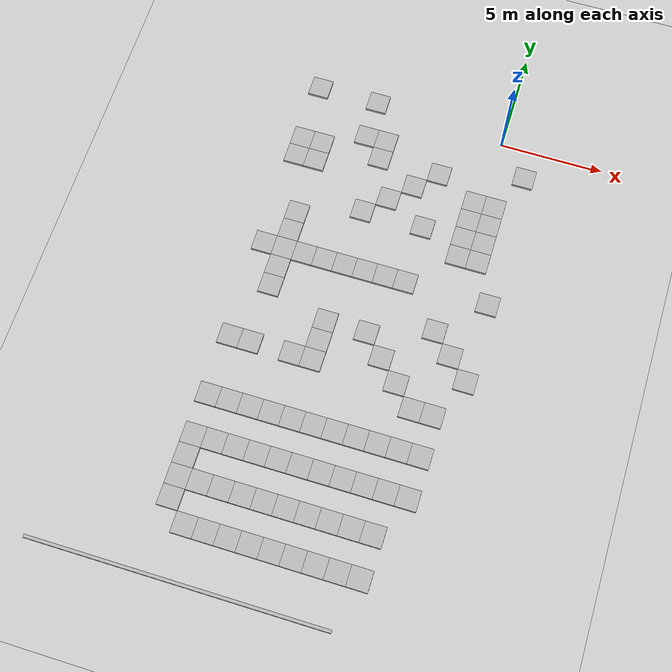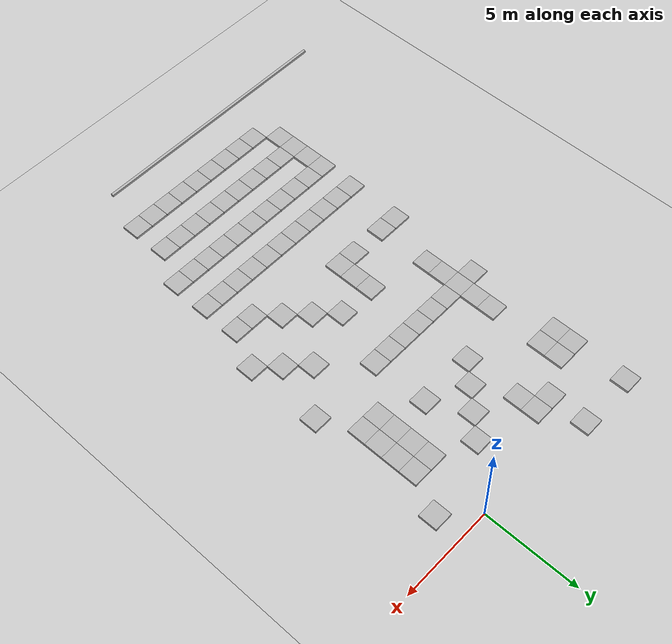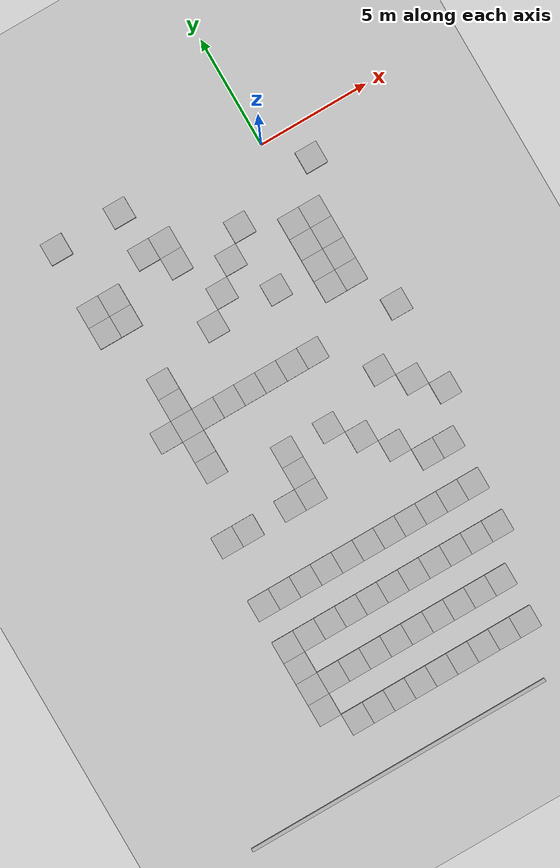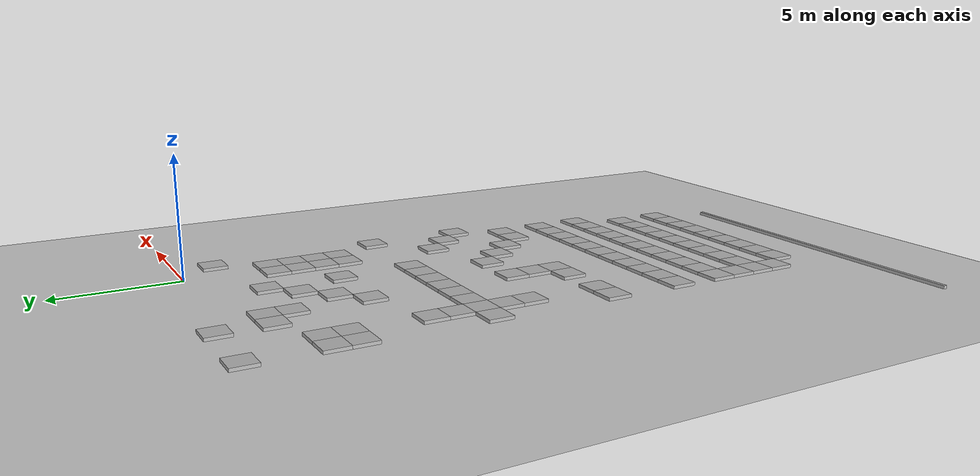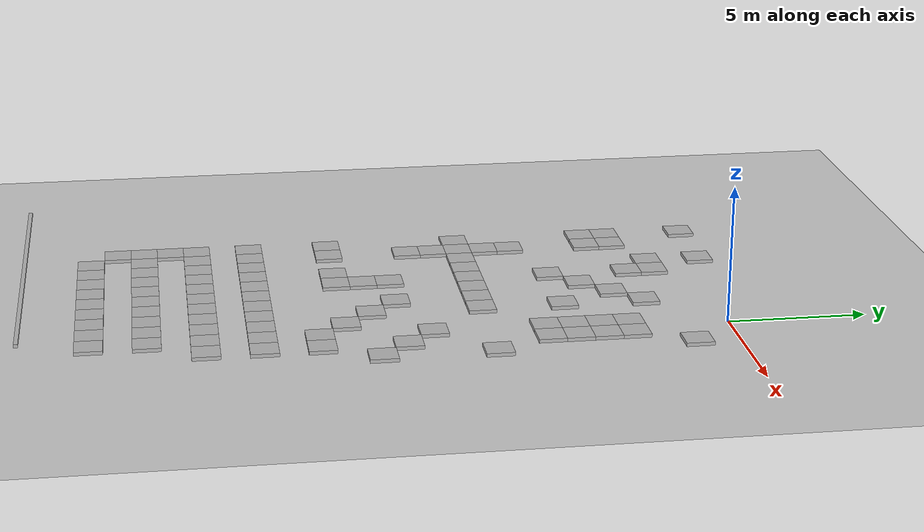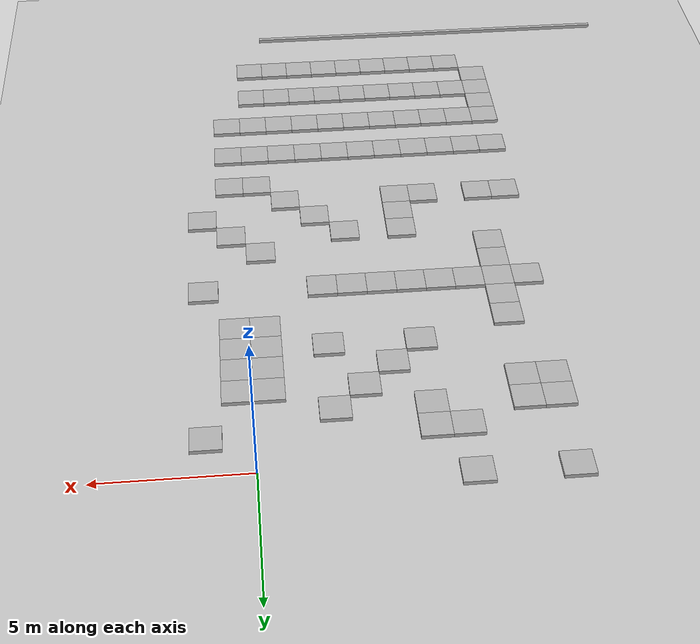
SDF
<sdf version="1.7">
 <world name="default">
  <model name="ground_plane">
   <static>1</static>
   <link name="link">
    <collision name="collision">
     <geometry><plane><normal>0 0 1</normal><size>100 100</size></plane></geometry>
     <surface>
      <contact><collide_bitmask>65535</collide_bitmask></contact>
      <friction><ode><mu>100</mu><mu2>50</mu2></ode></friction>
     </surface>
    </collision>
    <visual name="visual">
     <cast_shadows>0</cast_shadows>
     <geometry><plane><normal>0 0 1</normal><size>100 100</size></plane></geometry>
     <material>
      <script><uri>file://media/materials/scripts/gazebo.material</uri><name>Gazebo/Grey</name></script>
     </material>
    </visual>
   </link>
  </model>
  <model name="concrete_barrier_14m_6">
   <static>1</static>
   <link name="link">
    <collision name="concrete_barrier_14m_01">
     <pose>-0 0 0.3 0 -0 0</pose>
     <geometry><box><size>14 0.15 0.6</size></box></geometry>
    </collision>
    <visual name="concrete_barrier_14m_visual">
     <geometry><mesh><uri>model://concrete_barrier_14m/meshes/concrete_barrier_14m.dae</uri></mesh></geometry>
    </visual>
   </link>
   <pose>-8 -25 0 0 0 -1.56953</pose>
  </model>
  <model name="concrete_cube_1m_8">
   <static>1</static>
   <link name="link">
    <collision name="concrete_cube_1m">
     <pose>-0 0 0.3 0 -0 0</pose>
     <geometry><box><size>1 1 0.6</size></box></geometry>
    </collision>
    <visual name="concrete_cube_1m_visual">
     <geometry><mesh><uri>model://concrete_cube_1m/meshes/concrete_cube_1m.dae</uri></mesh></geometry>
    </visual>
   </link>
   <pose>-0.5 -4.5 0 0 -0 0</pose>
  </model>
  <model name="concrete_cube_1m_9">
   <static>1</static>
   <link name="link">
    <collision name="concrete_cube_1m">
     <pose>-0 0 0.3 0 -0 0</pose>
     <geometry><box><size>1 1 0.6</size></box></geometry>
    </collision>
    <visual name="concrete_cube_1m_visual">
     <geometry><mesh><uri>model://concrete_cube_1m/meshes/concrete_cube_1m.dae</uri></mesh></geometry>
    </visual>
   </link>
   <pose>0.5 -4.5 0 0 -0 0</pose>
  </model>
  <model name="concrete_cube_1m_12">
   <static>1</static>
   <link name="link">
    <collision name="concrete_cube_1m">
     <pose>-0 0 0.3 0 -0 0</pose>
     <geometry><box><size>1 1 0.6</size></box></geometry>
    </collision>
    <visual name="concrete_cube_1m_visual">
     <geometry><mesh><uri>model://concrete_cube_1m/meshes/concrete_cube_1m.dae</uri></mesh></geometry>
    </visual>
   </link>
   <pose>-8.5 -8.5 0 0 -0 0</pose>
  </model>
  <model name="concrete_cube_1m_13">
   <static>1</static>
   <link name="link">
    <collision name="concrete_cube_1m">
     <pose>-0 0 0.3 0 -0 0</pose>
     <geometry><box><size>1 1 0.6</size></box></geometry>
    </collision>
    <visual name="concrete_cube_1m_visual">
     <geometry><mesh><uri>model://concrete_cube_1m/meshes/concrete_cube_1m.dae</uri></mesh></geometry>
    </visual>
   </link>
   <pose>-7.5 -8.5 0 0 -0 0</pose>
  </model>
  <model name="concrete_cube_1m_14">
   <static>1</static>
   <link name="link">
    <collision name="concrete_cube_1m">
     <pose>-0 0 0.3 0 -0 0</pose>
     <geometry><box><size>1 1 0.6</size></box></geometry>
    </collision>
    <visual name="concrete_cube_1m_visual">
     <geometry><mesh><uri>model://concrete_cube_1m/meshes/concrete_cube_1m.dae</uri></mesh></geometry>
    </visual>
   </link>
   <pose>-6.5 -8.5 0 0 -0 0</pose>
  </model>
  <model name="concrete_cube_1m_15">
   <static>1</static>
   <link name="link">
    <collision name="concrete_cube_1m">
     <pose>-0 0 0.3 0 -0 0</pose>
     <geometry><box><size>1 1 0.6</size></box></geometry>
    </collision>
    <visual name="concrete_cube_1m_visual">
     <geometry><mesh><uri>model://concrete_cube_1m/meshes/concrete_cube_1m.dae</uri></mesh></geometry>
    </visual>
   </link>
   <pose>-8.5 -7.5 0 0 -0 0</pose>
  </model>
  <model name="concrete_cube_1m_16">
   <static>1</static>
   <link name="link">
    <collision name="concrete_cube_1m">
     <pose>-0 0 0.3 0 -0 0</pose>
     <geometry><box><size>1 1 0.6</size></box></geometry>
    </collision>
    <visual name="concrete_cube_1m_visual">
     <geometry><mesh><uri>model://concrete_cube_1m/meshes/concrete_cube_1m.dae</uri></mesh></geometry>
    </visual>
   </link>
   <pose>-8.5 -6.5 0 0 -0 0</pose>
  </model>
  <model name="concrete_cube_1m_50">
   <static>1</static>
   <link name="link">
    <collision name="concrete_cube_1m">
     <pose>-0 0 0.3 0 -0 0</pose>
     <geometry><box><size>1 1 0.6</size></box></geometry>
    </collision>
    <visual name="concrete_cube_1m_visual">
     <geometry><mesh><uri>model://concrete_cube_1m/meshes/concrete_cube_1m.dae</uri></mesh></geometry>
    </visual>
   </link>
   <pose>-6.5 0.5 0 0 -0 0</pose>
  </model>
  <model name="concrete_cube_1m_62">
   <static>1</static>
   <link name="link">
    <collision name="concrete_cube_1m">
     <pose>-0 0 0.3 0 -0 0</pose>
     <geometry><box><size>1 1 0.6</size></box></geometry>
    </collision>
    <visual name="concrete_cube_1m_visual">
     <geometry><mesh><uri>model://concrete_cube_1m/meshes/concrete_cube_1m.dae</uri></mesh></geometry>
    </visual>
   </link>
   <pose>-9.5 0.5 0 0 -0 0</pose>
  </model>
  <model name="concrete_cube_1m_76">
   <static>1</static>
   <link name="link">
    <collision name="concrete_cube_1m">
     <pose>-0 0 0.3 0 -0 0</pose>
     <geometry><box><size>1 1 0.6</size></box></geometry>
    </collision>
    <visual name="concrete_cube_1m_visual">
     <geometry><mesh><uri>model://concrete_cube_1m/meshes/concrete_cube_1m.dae</uri></mesh></geometry>
    </visual>
   </link>
   <pose>0.5 -3.5 0 0 -0 0</pose>
  </model>
  <model name="concrete_cube_1m_77">
   <static>1</static>
   <link name="link">
    <collision name="concrete_cube_1m">
     <pose>-0 0 0.3 0 -0 0</pose>
     <geometry><box><size>1 1 0.6</size></box></geometry>
    </collision>
    <visual name="concrete_cube_1m_visual">
     <geometry><mesh><uri>model://concrete_cube_1m/meshes/concrete_cube_1m.dae</uri></mesh></geometry>
    </visual>
   </link>
   <pose>-0.5 -3.5 0 0 -0 0</pose>
  </model>
  <model name="concrete_cube_1m_78">
   <static>1</static>
   <link name="link">
    <collision name="concrete_cube_1m">
     <pose>-0 0 0.3 0 -0 0</pose>
     <geometry><box><size>1 1 0.6</size></box></geometry>
    </collision>
    <visual name="concrete_cube_1m_visual">
     <geometry><mesh><uri>model://concrete_cube_1m/meshes/concrete_cube_1m.dae</uri></mesh></geometry>
    </visual>
   </link>
   <pose>0.5 -6.5 0 0 -0 0</pose>
  </model>
  <model name="concrete_cube_1m_79">
   <static>1</static>
   <link name="link">
    <collision name="concrete_cube_1m">
     <pose>-0 0 0.3 0 -0 0</pose>
     <geometry><box><size>1 1 0.6</size></box></geometry>
    </collision>
    <visual name="concrete_cube_1m_visual">
     <geometry><mesh><uri>model://concrete_cube_1m/meshes/concrete_cube_1m.dae</uri></mesh></geometry>
    </visual>
   </link>
   <pose>0.5 -5.5 0 0 -0 0</pose>
  </model>
  <model name="concrete_cube_1m_80">
   <static>1</static>
   <link name="link">
    <collision name="concrete_cube_1m">
     <pose>-0 0 0.3 0 -0 0</pose>
     <geometry><box><size>1 1 0.6</size></box></geometry>
    </collision>
    <visual name="concrete_cube_1m_visual">
     <geometry><mesh><uri>model://concrete_cube_1m/meshes/concrete_cube_1m.dae</uri></mesh></geometry>
    </visual>
   </link>
   <pose>-0.5 -6.5 0 0 -0 0</pose>
  </model>
  <model name="concrete_cube_1m_81">
   <static>1</static>
   <link name="link">
    <collision name="concrete_cube_1m">
     <pose>-0 0 0.3 0 -0 0</pose>
     <geometry><box><size>1 1 0.6</size></box></geometry>
    </collision>
    <visual name="concrete_cube_1m_visual">
     <geometry><mesh><uri>model://concrete_cube_1m/meshes/concrete_cube_1m.dae</uri></mesh></geometry>
    </visual>
   </link>
   <pose>-0.5 -5.5 0 0 -0 0</pose>
  </model>
  <model name="concrete_cube_1m_86">
   <static>1</static>
   <link name="link">
    <collision name="concrete_cube_1m">
     <pose>-0 0 0.3 0 -0 0</pose>
     <geometry><box><size>1 1 0.6</size></box></geometry>
    </collision>
    <visual name="concrete_cube_1m_visual">
     <geometry><mesh><uri>model://concrete_cube_1m/meshes/concrete_cube_1m.dae</uri></mesh></geometry>
    </visual>
   </link>
   <pose>1.5 -1.5 0 0 -0 0</pose>
  </model>
  <model name="concrete_cube_1m_88">
   <static>1</static>
   <link name="link">
    <collision name="concrete_cube_1m">
     <pose>-0 0 0.3 0 -0 0</pose>
     <geometry><box><size>1 1 0.6</size></box></geometry>
    </collision>
    <visual name="concrete_cube_1m_visual">
     <geometry><mesh><uri>model://concrete_cube_1m/meshes/concrete_cube_1m.dae</uri></mesh></geometry>
    </visual>
   </link>
   <pose>-5.5 -8.5 0 0 -0 0</pose>
  </model>
  <model name="concrete_cube_1m_89">
   <static>1</static>
   <link name="link">
    <collision name="concrete_cube_1m">
     <pose>-0 0 0.3 0 -0 0</pose>
     <geometry><box><size>1 1 0.6</size></box></geometry>
    </collision>
    <visual name="concrete_cube_1m_visual">
     <geometry><mesh><uri>model://concrete_cube_1m/meshes/concrete_cube_1m.dae</uri></mesh></geometry>
    </visual>
   </link>
   <pose>-4.5 -8.5 0 0 -0 0</pose>
  </model>
  <model name="concrete_cube_1m_90">
   <static>1</static>
   <link name="link">
    <collision name="concrete_cube_1m">
     <pose>-0 0 0.3 0 -0 0</pose>
     <geometry><box><size>1 1 0.6</size></box></geometry>
    </collision>
    <visual name="concrete_cube_1m_visual">
     <geometry><mesh><uri>model://concrete_cube_1m/meshes/concrete_cube_1m.dae</uri></mesh></geometry>
    </visual>
   </link>
   <pose>-3.5 -8.5 0 0 -0 0</pose>
  </model>
  <model name="concrete_cube_1m_91">
   <static>1</static>
   <link name="link">
    <collision name="concrete_cube_1m">
     <pose>-0 0 0.3 0 -0 0</pose>
     <geometry><box><size>1 1 0.6</size></box></geometry>
    </collision>
    <visual name="concrete_cube_1m_visual">
     <geometry><mesh><uri>model://concrete_cube_1m/meshes/concrete_cube_1m.dae</uri></mesh></geometry>
    </visual>
   </link>
   <pose>-2.5 -8.5 0 0 -0 0</pose>
  </model>
  <model name="concrete_cube_1m_92">
   <static>1</static>
   <link name="link">
    <collision name="concrete_cube_1m">
     <pose>-0 0 0.3 0 -0 0</pose>
     <geometry><box><size>1 1 0.6</size></box></geometry>
    </collision>
    <visual name="concrete_cube_1m_visual">
     <geometry><mesh><uri>model://concrete_cube_1m/meshes/concrete_cube_1m.dae</uri></mesh></geometry>
    </visual>
   </link>
   <pose>-9.5 -3.5 0 0 -0 0</pose>
  </model>
  <model name="concrete_cube_1m_93">
   <static>1</static>
   <link name="link">
    <collision name="concrete_cube_1m">
     <pose>-0 0 0.3 0 -0 0</pose>
     <geometry><box><size>1 1 0.6</size></box></geometry>
    </collision>
    <visual name="concrete_cube_1m_visual">
     <geometry><mesh><uri>model://concrete_cube_1m/meshes/concrete_cube_1m.dae</uri></mesh></geometry>
    </visual>
   </link>
   <pose>-8.5 -3.5 0 0 -0 0</pose>
  </model>
  <model name="concrete_cube_1m_94">
   <static>1</static>
   <link name="link">
    <collision name="concrete_cube_1m">
     <pose>-0 0 0.3 0 -0 0</pose>
     <geometry><box><size>1 1 0.6</size></box></geometry>
    </collision>
    <visual name="concrete_cube_1m_visual">
     <geometry><mesh><uri>model://concrete_cube_1m/meshes/concrete_cube_1m.dae</uri></mesh></geometry>
    </visual>
   </link>
   <pose>-8.5 -2.5 0 0 -0 0</pose>
  </model>
  <model name="concrete_cube_1m_95">
   <static>1</static>
   <link name="link">
    <collision name="concrete_cube_1m">
     <pose>-0 0 0.3 0 -0 0</pose>
     <geometry><box><size>1 1 0.6</size></box></geometry>
    </collision>
    <visual name="concrete_cube_1m_visual">
     <geometry><mesh><uri>model://concrete_cube_1m/meshes/concrete_cube_1m.dae</uri></mesh></geometry>
    </visual>
   </link>
   <pose>-9.5 -2.5 0 0 -0 0</pose>
  </model>
  <model name="concrete_cube_1m_96">
   <static>1</static>
   <link name="link">
    <collision name="concrete_cube_1m">
     <pose>-0 0 0.3 0 -0 0</pose>
     <geometry><box><size>1 1 0.6</size></box></geometry>
    </collision>
    <visual name="concrete_cube_1m_visual">
     <geometry><mesh><uri>model://concrete_cube_1m/meshes/concrete_cube_1m.dae</uri></mesh></geometry>
    </visual>
   </link>
   <pose>-5.5 -5.5 0 0 -0 0</pose>
  </model>
  <model name="concrete_cube_1m_97">
   <static>1</static>
   <link name="link">
    <collision name="concrete_cube_1m">
     <pose>-0 0 0.3 0 -0 0</pose>
     <geometry><box><size>1 1 0.6</size></box></geometry>
    </collision>
    <visual name="concrete_cube_1m_visual">
     <geometry><mesh><uri>model://concrete_cube_1m/meshes/concrete_cube_1m.dae</uri></mesh></geometry>
    </visual>
   </link>
   <pose>-4.5 -4.5 0 0 -0 0</pose>
  </model>
  <model name="concrete_cube_1m_98">
   <static>1</static>
   <link name="link">
    <collision name="concrete_cube_1m">
     <pose>-0 0 0.3 0 -0 0</pose>
     <geometry><box><size>1 1 0.6</size></box></geometry>
    </collision>
    <visual name="concrete_cube_1m_visual">
     <geometry><mesh><uri>model://concrete_cube_1m/meshes/concrete_cube_1m.dae</uri></mesh></geometry>
    </visual>
   </link>
   <pose>-3.5 -3.5 0 0 -0 0</pose>
  </model>
  <model name="concrete_cube_1m_99">
   <static>1</static>
   <link name="link">
    <collision name="concrete_cube_1m">
     <pose>-0 0 0.3 0 -0 0</pose>
     <geometry><box><size>1 1 0.6</size></box></geometry>
    </collision>
    <visual name="concrete_cube_1m_visual">
     <geometry><mesh><uri>model://concrete_cube_1m/meshes/concrete_cube_1m.dae</uri></mesh></geometry>
    </visual>
   </link>
   <pose>-2.5 -2.5 0 0 -0 0</pose>
  </model>
  <model name="concrete_cube_1m_100">
   <static>1</static>
   <link name="link">
    <collision name="concrete_cube_1m">
     <pose>-0 0 0.3 0 -0 0</pose>
     <geometry><box><size>1 1 0.6</size></box></geometry>
    </collision>
    <visual name="concrete_cube_1m_visual">
     <geometry><mesh><uri>model://concrete_cube_1m/meshes/concrete_cube_1m.dae</uri></mesh></geometry>
    </visual>
   </link>
   <pose>-6.5 -1.5 0 0 -0 0</pose>
  </model>
  <model name="concrete_cube_1m_101">
   <static>1</static>
   <link name="link">
    <collision name="concrete_cube_1m">
     <pose>-0 0 0.3 0 -0 0</pose>
     <geometry><box><size>1 1 0.6</size></box></geometry>
    </collision>
    <visual name="concrete_cube_1m_visual">
     <geometry><mesh><uri>model://concrete_cube_1m/meshes/concrete_cube_1m.dae</uri></mesh></geometry>
    </visual>
   </link>
   <pose>-5.5 -1.5 0 0 -0 0</pose>
  </model>
  <model name="concrete_cube_1m_102">
   <static>1</static>
   <link name="link">
    <collision name="concrete_cube_1m">
     <pose>-0 0 0.3 0 -0 0</pose>
     <geometry><box><size>1 1 0.6</size></box></geometry>
    </collision>
    <visual name="concrete_cube_1m_visual">
     <geometry><mesh><uri>model://concrete_cube_1m/meshes/concrete_cube_1m.dae</uri></mesh></geometry>
    </visual>
   </link>
   <pose>-5.5 -2.5 0 0 -0 0</pose>
  </model>
  <model name="concrete_cube_1m_103">
   <static>1</static>
   <link name="link">
    <collision name="concrete_cube_1m">
     <pose>-0 0 0.3 0 -0 0</pose>
     <geometry><box><size>1 1 0.6</size></box></geometry>
    </collision>
    <visual name="concrete_cube_1m_visual">
     <geometry><mesh><uri>model://concrete_cube_1m/meshes/concrete_cube_1m.dae</uri></mesh></geometry>
    </visual>
   </link>
   <pose>-2.5 -5.5 0 0 -0 0</pose>
  </model>
  <model name="concrete_cube_1m_107">
   <static>1</static>
   <link name="link">
    <collision name="concrete_cube_1m">
     <pose>-0 0 0.3 0 -0 0</pose>
     <geometry><box><size>1 1 0.6</size></box></geometry>
    </collision>
    <visual name="concrete_cube_1m_visual">
     <geometry><mesh><uri>model://concrete_cube_1m/meshes/concrete_cube_1m.dae</uri></mesh></geometry>
    </visual>
   </link>
   <pose>0.5 -14.5 0 0 -0 0</pose>
  </model>
  <model name="concrete_cube_1m_108">
   <static>1</static>
   <link name="link">
    <collision name="concrete_cube_1m">
     <pose>-0 0 0.3 0 -0 0</pose>
     <geometry><box><size>1 1 0.6</size></box></geometry>
    </collision>
    <visual name="concrete_cube_1m_visual">
     <geometry><mesh><uri>model://concrete_cube_1m/meshes/concrete_cube_1m.dae</uri></mesh></geometry>
    </visual>
   </link>
   <pose>-0.5 -14.5 0 0 -0 0</pose>
  </model>
  <model name="concrete_cube_1m_183">
   <static>1</static>
   <link name="link">
    <collision name="concrete_cube_1m">
     <pose>-0 0 0.3 0 -0 0</pose>
     <geometry><box><size>1 1 0.6</size></box></geometry>
    </collision>
    <visual name="concrete_cube_1m_visual">
     <geometry><mesh><uri>model://concrete_cube_1m/meshes/concrete_cube_1m.dae</uri></mesh></geometry>
    </visual>
   </link>
   <pose>-8.5 -9.5 0 0 -0 0</pose>
  </model>
  <model name="concrete_cube_1m_184">
   <static>1</static>
   <link name="link">
    <collision name="concrete_cube_1m">
     <pose>-0 0 0.3 0 -0 0</pose>
     <geometry><box><size>1 1 0.6</size></box></geometry>
    </collision>
    <visual name="concrete_cube_1m_visual">
     <geometry><mesh><uri>model://concrete_cube_1m/meshes/concrete_cube_1m.dae</uri></mesh></geometry>
    </visual>
   </link>
   <pose>-8.5 -10.5 0 0 -0 0</pose>
  </model>
  <model name="concrete_cube_1m_185">
   <static>1</static>
   <link name="link">
    <collision name="concrete_cube_1m">
     <pose>-0 0 0.3 0 -0 0</pose>
     <geometry><box><size>1 1 0.6</size></box></geometry>
    </collision>
    <visual name="concrete_cube_1m_visual">
     <geometry><mesh><uri>model://concrete_cube_1m/meshes/concrete_cube_1m.dae</uri></mesh></geometry>
    </visual>
   </link>
   <pose>-9.5 -8.5 0 0 -0 0</pose>
  </model>
  <model name="concrete_cube_1m_192">
   <static>1</static>
   <link name="link">
    <collision name="concrete_cube_1m">
     <pose>-0 0 0.3 0 -0 0</pose>
     <geometry><box><size>1 1 0.6</size></box></geometry>
    </collision>
    <visual name="concrete_cube_1m_visual">
     <geometry><mesh><uri>model://concrete_cube_1m/meshes/concrete_cube_1m.dae</uri></mesh></geometry>
    </visual>
   </link>
   <pose>-1.5 -13.5 0 0 -0 0</pose>
  </model>
  <model name="concrete_cube_1m_193">
   <static>1</static>
   <link name="link">
    <collision name="concrete_cube_1m">
     <pose>-0 0 0.3 0 -0 0</pose>
     <geometry><box><size>1 1 0.6</size></box></geometry>
    </collision>
    <visual name="concrete_cube_1m_visual">
     <geometry><mesh><uri>model://concrete_cube_1m/meshes/concrete_cube_1m.dae</uri></mesh></geometry>
    </visual>
   </link>
   <pose>-2.5 -12.5 0 0 -0 0</pose>
  </model>
  <model name="concrete_cube_1m_194">
   <static>1</static>
   <link name="link">
    <collision name="concrete_cube_1m">
     <pose>-0 0 0.3 0 -0 0</pose>
     <geometry><box><size>1 1 0.6</size></box></geometry>
    </collision>
    <visual name="concrete_cube_1m_visual">
     <geometry><mesh><uri>model://concrete_cube_1m/meshes/concrete_cube_1m.dae</uri></mesh></geometry>
    </visual>
   </link>
   <pose>-3.5 -11.5 0 0 -0 0</pose>
  </model>
  <model name="concrete_cube_1m_196">
   <static>1</static>
   <link name="link">
    <collision name="concrete_cube_1m">
     <pose>-0 0 0.3 0 -0 0</pose>
     <geometry><box><size>1 1 0.6</size></box></geometry>
    </collision>
    <visual name="concrete_cube_1m_visual">
     <geometry><mesh><uri>model://concrete_cube_1m/meshes/concrete_cube_1m.dae</uri></mesh></geometry>
    </visual>
   </link>
   <pose>-9.5 -13.5 0 0 -0 0</pose>
  </model>
  <model name="concrete_cube_1m_197">
   <static>1</static>
   <link name="link">
    <collision name="concrete_cube_1m">
     <pose>-0 0 0.3 0 -0 0</pose>
     <geometry><box><size>1 1 0.6</size></box></geometry>
    </collision>
    <visual name="concrete_cube_1m_visual">
     <geometry><mesh><uri>model://concrete_cube_1m/meshes/concrete_cube_1m.dae</uri></mesh></geometry>
    </visual>
   </link>
   <pose>-8.5 -13.5 0 0 -0 0</pose>
  </model>
  <model name="concrete_cube_1m_199">
   <static>1</static>
   <link name="link">
    <collision name="concrete_cube_1m">
     <pose>-0 0 0.3 0 -0 0</pose>
     <geometry><box><size>1 1 0.6</size></box></geometry>
    </collision>
    <visual name="concrete_cube_1m_visual">
     <geometry><mesh><uri>model://concrete_cube_1m/meshes/concrete_cube_1m.dae</uri></mesh></geometry>
    </visual>
   </link>
   <pose>-6.5 -13.5 0 0 -0 0</pose>
  </model>
  <model name="concrete_cube_1m_200">
   <static>1</static>
   <link name="link">
    <collision name="concrete_cube_1m">
     <pose>-0 0 0.3 0 -0 0</pose>
     <geometry><box><size>1 1 0.6</size></box></geometry>
    </collision>
    <visual name="concrete_cube_1m_visual">
     <geometry><mesh><uri>model://concrete_cube_1m/meshes/concrete_cube_1m.dae</uri></mesh></geometry>
    </visual>
   </link>
   <pose>-5.5 -13.5 0 0 -0 0</pose>
  </model>
  <model name="concrete_cube_1m_201">
   <static>1</static>
   <link name="link">
    <collision name="concrete_cube_1m">
     <pose>-0 0 0.3 0 -0 0</pose>
     <geometry><box><size>1 1 0.6</size></box></geometry>
    </collision>
    <visual name="concrete_cube_1m_visual">
     <geometry><mesh><uri>model://concrete_cube_1m/meshes/concrete_cube_1m.dae</uri></mesh></geometry>
    </visual>
   </link>
   <pose>-5.5 -12.5 0 0 -0 0</pose>
  </model>
  <model name="concrete_cube_1m_202">
   <static>1</static>
   <link name="link">
    <collision name="concrete_cube_1m">
     <pose>-0 0 0.3 0 -0 0</pose>
     <geometry><box><size>1 1 0.6</size></box></geometry>
    </collision>
    <visual name="concrete_cube_1m_visual">
     <geometry><mesh><uri>model://concrete_cube_1m/meshes/concrete_cube_1m.dae</uri></mesh></geometry>
    </visual>
   </link>
   <pose>-5.5 -11.5 0 0 -0 0</pose>
  </model>
  <model name="concrete_cube_1m_207">
   <static>1</static>
   <link name="link">
    <collision name="concrete_cube_1m">
     <pose>-0 0 0.3 0 -0 0</pose>
     <geometry><box><size>1 1 0.6</size></box></geometry>
    </collision>
    <visual name="concrete_cube_1m_visual">
     <geometry><mesh><uri>model://concrete_cube_1m/meshes/concrete_cube_1m.dae</uri></mesh></geometry>
    </visual>
   </link>
   <pose>-0.5 -10.5 0 0 -0 0</pose>
  </model>
  <model name="concrete_cube_1m_212">
   <static>1</static>
   <link name="link">
    <collision name="concrete_cube_1m">
     <pose>-0 0 0.3 0 -0 0</pose>
     <geometry><box><size>1 1 0.6</size></box></geometry>
    </collision>
    <visual name="concrete_cube_1m_visual">
     <geometry><mesh><uri>model://concrete_cube_1m/meshes/concrete_cube_1m.dae</uri></mesh></geometry>
    </visual>
   </link>
   <pose>1.5 -8.5 0 0 -0 0</pose>
  </model>
  <model name="concrete_cube_1m_213">
   <static>1</static>
   <link name="link">
    <collision name="concrete_cube_1m">
     <pose>-0 0 0.3 0 -0 0</pose>
     <geometry><box><size>1 1 0.6</size></box></geometry>
    </collision>
    <visual name="concrete_cube_1m_visual">
     <geometry><mesh><uri>model://concrete_cube_1m/meshes/concrete_cube_1m.dae</uri></mesh></geometry>
    </visual>
   </link>
   <pose>0.5 -11.5 0 0 -0 0</pose>
  </model>
  <model name="concrete_cube_1m_214">
   <static>1</static>
   <link name="link">
    <collision name="concrete_cube_1m">
     <pose>-0 0 0.3 0 -0 0</pose>
     <geometry><box><size>1 1 0.6</size></box></geometry>
    </collision>
    <visual name="concrete_cube_1m_visual">
     <geometry><mesh><uri>model://concrete_cube_1m/meshes/concrete_cube_1m.dae</uri></mesh></geometry>
    </visual>
   </link>
   <pose>1.5 -12.5 0 0 -0 0</pose>
  </model>
  <model name="concrete_cube_1m_391">
   <static>1</static>
   <link name="link">
    <collision name="concrete_cube_1m">
     <pose>-0 0 0.3 0 -0 0</pose>
     <geometry><box><size>1 1 0.6</size></box></geometry>
    </collision>
    <visual name="concrete_cube_1m_visual">
     <geometry><mesh><uri>model://concrete_cube_1m/meshes/concrete_cube_1m.dae</uri></mesh></geometry>
    </visual>
   </link>
   <pose>-7.5 -16.5 0 0 -0 0</pose>
  </model>
  <model name="concrete_cube_1m_392">
   <static>1</static>
   <link name="link">
    <collision name="concrete_cube_1m">
     <pose>-0 0 0.3 0 -0 0</pose>
     <geometry><box><size>1 1 0.6</size></box></geometry>
    </collision>
    <visual name="concrete_cube_1m_visual">
     <geometry><mesh><uri>model://concrete_cube_1m/meshes/concrete_cube_1m.dae</uri></mesh></geometry>
    </visual>
   </link>
   <pose>-9.5 -16.5 0 0 -0 0</pose>
  </model>
  <model name="concrete_cube_1m_393">
   <static>1</static>
   <link name="link">
    <collision name="concrete_cube_1m">
     <pose>-0 0 0.3 0 -0 0</pose>
     <geometry><box><size>1 1 0.6</size></box></geometry>
    </collision>
    <visual name="concrete_cube_1m_visual">
     <geometry><mesh><uri>model://concrete_cube_1m/meshes/concrete_cube_1m.dae</uri></mesh></geometry>
    </visual>
   </link>
   <pose>0.5 -18.5 0 0 -0 0</pose>
  </model>
  <model name="concrete_cube_1m_394">
   <static>1</static>
   <link name="link">
    <collision name="concrete_cube_1m">
     <pose>-0 0 0.3 0 -0 0</pose>
     <geometry><box><size>1 1 0.6</size></box></geometry>
    </collision>
    <visual name="concrete_cube_1m_visual">
     <geometry><mesh><uri>model://concrete_cube_1m/meshes/concrete_cube_1m.dae</uri></mesh></geometry>
    </visual>
   </link>
   <pose>-9.5 -18.5 0 0 -0 0</pose>
  </model>
  <model name="concrete_cube_1m_395">
   <static>1</static>
   <link name="link">
    <collision name="concrete_cube_1m">
     <pose>-0 0 0.3 0 -0 0</pose>
     <geometry><box><size>1 1 0.6</size></box></geometry>
    </collision>
    <visual name="concrete_cube_1m_visual">
     <geometry><mesh><uri>model://concrete_cube_1m/meshes/concrete_cube_1m.dae</uri></mesh></geometry>
    </visual>
   </link>
   <pose>-8.5 -18.5 0 0 -0 0</pose>
  </model>
  <model name="concrete_cube_1m_396">
   <static>1</static>
   <link name="link">
    <collision name="concrete_cube_1m">
     <pose>-0 0 0.3 0 -0 0</pose>
     <geometry><box><size>1 1 0.6</size></box></geometry>
    </collision>
    <visual name="concrete_cube_1m_visual">
     <geometry><mesh><uri>model://concrete_cube_1m/meshes/concrete_cube_1m.dae</uri></mesh></geometry>
    </visual>
   </link>
   <pose>-7.5 -18.5 0 0 -0 0</pose>
  </model>
  <model name="concrete_cube_1m_397">
   <static>1</static>
   <link name="link">
    <collision name="concrete_cube_1m">
     <pose>-0 0 0.3 0 -0 0</pose>
     <geometry><box><size>1 1 0.6</size></box></geometry>
    </collision>
    <visual name="concrete_cube_1m_visual">
     <geometry><mesh><uri>model://concrete_cube_1m/meshes/concrete_cube_1m.dae</uri></mesh></geometry>
    </visual>
   </link>
   <pose>-6.5 -18.5 0 0 -0 0</pose>
  </model>
  <model name="concrete_cube_1m_398">
   <static>1</static>
   <link name="link">
    <collision name="concrete_cube_1m">
     <pose>-0 0 0.3 0 -0 0</pose>
     <geometry><box><size>1 1 0.6</size></box></geometry>
    </collision>
    <visual name="concrete_cube_1m_visual">
     <geometry><mesh><uri>model://concrete_cube_1m/meshes/concrete_cube_1m.dae</uri></mesh></geometry>
    </visual>
   </link>
   <pose>-5.5 -18.5 0 0 -0 0</pose>
  </model>
  <model name="concrete_cube_1m_399">
   <static>1</static>
   <link name="link">
    <collision name="concrete_cube_1m">
     <pose>-0 0 0.3 0 -0 0</pose>
     <geometry><box><size>1 1 0.6</size></box></geometry>
    </collision>
    <visual name="concrete_cube_1m_visual">
     <geometry><mesh><uri>model://concrete_cube_1m/meshes/concrete_cube_1m.dae</uri></mesh></geometry>
    </visual>
   </link>
   <pose>-4.5 -18.5 0 0 -0 0</pose>
  </model>
  <model name="concrete_cube_1m_400">
   <static>1</static>
   <link name="link">
    <collision name="concrete_cube_1m">
     <pose>-0 0 0.3 0 -0 0</pose>
     <geometry><box><size>1 1 0.6</size></box></geometry>
    </collision>
    <visual name="concrete_cube_1m_visual">
     <geometry><mesh><uri>model://concrete_cube_1m/meshes/concrete_cube_1m.dae</uri></mesh></geometry>
    </visual>
   </link>
   <pose>-3.5 -18.5 0 0 -0 0</pose>
  </model>
  <model name="concrete_cube_1m_401">
   <static>1</static>
   <link name="link">
    <collision name="concrete_cube_1m">
     <pose>-0 0 0.3 0 -0 0</pose>
     <geometry><box><size>1 1 0.6</size></box></geometry>
    </collision>
    <visual name="concrete_cube_1m_visual">
     <geometry><mesh><uri>model://concrete_cube_1m/meshes/concrete_cube_1m.dae</uri></mesh></geometry>
    </visual>
   </link>
   <pose>-2.5 -18.5 0 0 -0 0</pose>
  </model>
  <model name="concrete_cube_1m_402">
   <static>1</static>
   <link name="link">
    <collision name="concrete_cube_1m">
     <pose>-0 0 0.3 0 -0 0</pose>
     <geometry><box><size>1 1 0.6</size></box></geometry>
    </collision>
    <visual name="concrete_cube_1m_visual">
     <geometry><mesh><uri>model://concrete_cube_1m/meshes/concrete_cube_1m.dae</uri></mesh></geometry>
    </visual>
   </link>
   <pose>-1.5 -18.5 0 0 -0 0</pose>
  </model>
  <model name="concrete_cube_1m_403">
   <static>1</static>
   <link name="link">
    <collision name="concrete_cube_1m">
     <pose>-0 0 0.3 0 -0 0</pose>
     <geometry><box><size>1 1 0.6</size></box></geometry>
    </collision>
    <visual name="concrete_cube_1m_visual">
     <geometry><mesh><uri>model://concrete_cube_1m/meshes/concrete_cube_1m.dae</uri></mesh></geometry>
    </visual>
   </link>
   <pose>-8.5 -16.5 0 0 -0 0</pose>
  </model>
  <model name="concrete_cube_1m_404">
   <static>1</static>
   <link name="link">
    <collision name="concrete_cube_1m">
     <pose>-0 0 0.3 0 -0 0</pose>
     <geometry><box><size>1 1 0.6</size></box></geometry>
    </collision>
    <visual name="concrete_cube_1m_visual">
     <geometry><mesh><uri>model://concrete_cube_1m/meshes/concrete_cube_1m.dae</uri></mesh></geometry>
    </visual>
   </link>
   <pose>-6.5 -16.5 0 0 -0 0</pose>
  </model>
  <model name="concrete_cube_1m_405">
   <static>1</static>
   <link name="link">
    <collision name="concrete_cube_1m">
     <pose>-0 0 0.3 0 -0 0</pose>
     <geometry><box><size>1 1 0.6</size></box></geometry>
    </collision>
    <visual name="concrete_cube_1m_visual">
     <geometry><mesh><uri>model://concrete_cube_1m/meshes/concrete_cube_1m.dae</uri></mesh></geometry>
    </visual>
   </link>
   <pose>-5.5 -16.5 0 0 -0 0</pose>
  </model>
  <model name="concrete_cube_1m_406">
   <static>1</static>
   <link name="link">
    <collision name="concrete_cube_1m">
     <pose>-0 0 0.3 0 -0 0</pose>
     <geometry><box><size>1 1 0.6</size></box></geometry>
    </collision>
    <visual name="concrete_cube_1m_visual">
     <geometry><mesh><uri>model://concrete_cube_1m/meshes/concrete_cube_1m.dae</uri></mesh></geometry>
    </visual>
   </link>
   <pose>-4.5 -16.5 0 0 -0 0</pose>
  </model>
  <model name="concrete_cube_1m_407">
   <static>1</static>
   <link name="link">
    <collision name="concrete_cube_1m">
     <pose>-0 0 0.3 0 -0 0</pose>
     <geometry><box><size>1 1 0.6</size></box></geometry>
    </collision>
    <visual name="concrete_cube_1m_visual">
     <geometry><mesh><uri>model://concrete_cube_1m/meshes/concrete_cube_1m.dae</uri></mesh></geometry>
    </visual>
   </link>
   <pose>-3.5 -16.5 0 0 -0 0</pose>
  </model>
  <model name="concrete_cube_1m_408">
   <static>1</static>
   <link name="link">
    <collision name="concrete_cube_1m">
     <pose>-0 0 0.3 0 -0 0</pose>
     <geometry><box><size>1 1 0.6</size></box></geometry>
    </collision>
    <visual name="concrete_cube_1m_visual">
     <geometry><mesh><uri>model://concrete_cube_1m/meshes/concrete_cube_1m.dae</uri></mesh></geometry>
    </visual>
   </link>
   <pose>-2.5 -16.5 0 0 -0 0</pose>
  </model>
  <model name="concrete_cube_1m_409">
   <static>1</static>
   <link name="link">
    <collision name="concrete_cube_1m">
     <pose>-0 0 0.3 0 -0 0</pose>
     <geometry><box><size>1 1 0.6</size></box></geometry>
    </collision>
    <visual name="concrete_cube_1m_visual">
     <geometry><mesh><uri>model://concrete_cube_1m/meshes/concrete_cube_1m.dae</uri></mesh></geometry>
    </visual>
   </link>
   <pose>-1.5 -16.5 0 0 -0 0</pose>
  </model>
  <model name="concrete_cube_1m_410">
   <static>1</static>
   <link name="link">
    <collision name="concrete_cube_1m">
     <pose>-0 0 0.3 0 -0 0</pose>
     <geometry><box><size>1 1 0.6</size></box></geometry>
    </collision>
    <visual name="concrete_cube_1m_visual">
     <geometry><mesh><uri>model://concrete_cube_1m/meshes/concrete_cube_1m.dae</uri></mesh></geometry>
    </visual>
   </link>
   <pose>-0.5 -16.5 0 0 -0 0</pose>
  </model>
  <model name="concrete_cube_1m_411">
   <static>1</static>
   <link name="link">
    <collision name="concrete_cube_1m">
     <pose>-0 0 0.3 0 -0 0</pose>
     <geometry><box><size>1 1 0.6</size></box></geometry>
    </collision>
    <visual name="concrete_cube_1m_visual">
     <geometry><mesh><uri>model://concrete_cube_1m/meshes/concrete_cube_1m.dae</uri></mesh></geometry>
    </visual>
   </link>
   <pose>0.5 -16.5 0 0 -0 0</pose>
  </model>
  <model name="concrete_cube_1m_412">
   <static>1</static>
   <link name="link">
    <collision name="concrete_cube_1m">
     <pose>-0 0 0.3 0 -0 0</pose>
     <geometry><box><size>1 1 0.6</size></box></geometry>
    </collision>
    <visual name="concrete_cube_1m_visual">
     <geometry><mesh><uri>model://concrete_cube_1m/meshes/concrete_cube_1m.dae</uri></mesh></geometry>
    </visual>
   </link>
   <pose>-0.5 -18.5 0 0 -0 0</pose>
  </model>
  <model name="concrete_cube_1m_529">
   <static>1</static>
   <link name="link">
    <collision name="concrete_cube_1m">
     <pose>-0 0 0.3 0 -0 0</pose>
     <geometry><box><size>1 1 0.6</size></box></geometry>
    </collision>
    <visual name="concrete_cube_1m_visual">
     <geometry><mesh><uri>model://concrete_cube_1m/meshes/concrete_cube_1m.dae</uri></mesh></geometry>
    </visual>
   </link>
   <pose>-9.5 -19.5 0 0 -0 0</pose>
  </model>
  <model name="concrete_cube_1m_530">
   <static>1</static>
   <link name="link">
    <collision name="concrete_cube_1m">
     <pose>-0 0 0.3 0 -0 0</pose>
     <geometry><box><size>1 1 0.6</size></box></geometry>
    </collision>
    <visual name="concrete_cube_1m_visual">
     <geometry><mesh><uri>model://concrete_cube_1m/meshes/concrete_cube_1m.dae</uri></mesh></geometry>
    </visual>
   </link>
   <pose>-9.5 -20.5 0 0 -0 0</pose>
  </model>
  <model name="concrete_cube_1m_531">
   <static>1</static>
   <link name="link">
    <collision name="concrete_cube_1m">
     <pose>-0 0 0.3 0 -0 0</pose>
     <geometry><box><size>1 1 0.6</size></box></geometry>
    </collision>
    <visual name="concrete_cube_1m_visual">
     <geometry><mesh><uri>model://concrete_cube_1m/meshes/concrete_cube_1m.dae</uri></mesh></geometry>
    </visual>
   </link>
   <pose>-8.5 -20.5 0 0 -0 0</pose>
  </model>
  <model name="concrete_cube_1m_532">
   <static>1</static>
   <link name="link">
    <collision name="concrete_cube_1m">
     <pose>-0 0 0.3 0 -0 0</pose>
     <geometry><box><size>1 1 0.6</size></box></geometry>
    </collision>
    <visual name="concrete_cube_1m_visual">
     <geometry><mesh><uri>model://concrete_cube_1m/meshes/concrete_cube_1m.dae</uri></mesh></geometry>
    </visual>
   </link>
   <pose>-7.5 -20.5 0 0 -0 0</pose>
  </model>
  <model name="concrete_cube_1m_533">
   <static>1</static>
   <link name="link">
    <collision name="concrete_cube_1m">
     <pose>-0 0 0.3 0 -0 0</pose>
     <geometry><box><size>1 1 0.6</size></box></geometry>
    </collision>
    <visual name="concrete_cube_1m_visual">
     <geometry><mesh><uri>model://concrete_cube_1m/meshes/concrete_cube_1m.dae</uri></mesh></geometry>
    </visual>
   </link>
   <pose>-6.5 -20.5 0 0 -0 0</pose>
  </model>
  <model name="concrete_cube_1m_534">
   <static>1</static>
   <link name="link">
    <collision name="concrete_cube_1m">
     <pose>-0 0 0.3 0 -0 0</pose>
     <geometry><box><size>1 1 0.6</size></box></geometry>
    </collision>
    <visual name="concrete_cube_1m_visual">
     <geometry><mesh><uri>model://concrete_cube_1m/meshes/concrete_cube_1m.dae</uri></mesh></geometry>
    </visual>
   </link>
   <pose>-5.5 -20.5 0 0 -0 0</pose>
  </model>
  <model name="concrete_cube_1m_535">
   <static>1</static>
   <link name="link">
    <collision name="concrete_cube_1m">
     <pose>-0 0 0.3 0 -0 0</pose>
     <geometry><box><size>1 1 0.6</size></box></geometry>
    </collision>
    <visual name="concrete_cube_1m_visual">
     <geometry><mesh><uri>model://concrete_cube_1m/meshes/concrete_cube_1m.dae</uri></mesh></geometry>
    </visual>
   </link>
   <pose>-4.5 -20.5 0 0 -0 0</pose>
  </model>
  <model name="concrete_cube_1m_536">
   <static>1</static>
   <link name="link">
    <collision name="concrete_cube_1m">
     <pose>-0 0 0.3 0 -0 0</pose>
     <geometry><box><size>1 1 0.6</size></box></geometry>
    </collision>
    <visual name="concrete_cube_1m_visual">
     <geometry><mesh><uri>model://concrete_cube_1m/meshes/concrete_cube_1m.dae</uri></mesh></geometry>
    </visual>
   </link>
   <pose>-3.5 -20.5 0 0 -0 0</pose>
  </model>
  <model name="concrete_cube_1m_537">
   <static>1</static>
   <link name="link">
    <collision name="concrete_cube_1m">
     <pose>-0 0 0.3 0 -0 0</pose>
     <geometry><box><size>1 1 0.6</size></box></geometry>
    </collision>
    <visual name="concrete_cube_1m_visual">
     <geometry><mesh><uri>model://concrete_cube_1m/meshes/concrete_cube_1m.dae</uri></mesh></geometry>
    </visual>
   </link>
   <pose>-2.5 -20.5 0 0 -0 0</pose>
  </model>
  <model name="concrete_cube_1m_538">
   <static>1</static>
   <link name="link">
    <collision name="concrete_cube_1m">
     <pose>-0 0 0.3 0 -0 0</pose>
     <geometry><box><size>1 1 0.6</size></box></geometry>
    </collision>
    <visual name="concrete_cube_1m_visual">
     <geometry><mesh><uri>model://concrete_cube_1m/meshes/concrete_cube_1m.dae</uri></mesh></geometry>
    </visual>
   </link>
   <pose>-1.5 -20.5 0 0 -0 0</pose>
  </model>
  <model name="concrete_cube_1m_539">
   <static>1</static>
   <link name="link">
    <collision name="concrete_cube_1m">
     <pose>-0 0 0.3 0 -0 0</pose>
     <geometry><box><size>1 1 0.6</size></box></geometry>
    </collision>
    <visual name="concrete_cube_1m_visual">
     <geometry><mesh><uri>model://concrete_cube_1m/meshes/concrete_cube_1m.dae</uri></mesh></geometry>
    </visual>
   </link>
   <pose>-0.5 -20.5 0 0 -0 0</pose>
  </model>
  <model name="concrete_cube_1m_540">
   <static>1</static>
   <link name="link">
    <collision name="concrete_cube_1m">
     <pose>-0 0 0.3 0 -0 0</pose>
     <geometry><box><size>1 1 0.6</size></box></geometry>
    </collision>
    <visual name="concrete_cube_1m_visual">
     <geometry><mesh><uri>model://concrete_cube_1m/meshes/concrete_cube_1m.dae</uri></mesh></geometry>
    </visual>
   </link>
   <pose>-9.5 -21.5 0 0 -0 0</pose>
  </model>
  <model name="concrete_cube_1m_542">
   <static>1</static>
   <link name="link">
    <collision name="concrete_cube_1m">
     <pose>-0 0 0.3 0 -0 0</pose>
     <geometry><box><size>1 1 0.6</size></box></geometry>
    </collision>
    <visual name="concrete_cube_1m_visual">
     <geometry><mesh><uri>model://concrete_cube_1m/meshes/concrete_cube_1m.dae</uri></mesh></geometry>
    </visual>
   </link>
   <pose>-8.5 -22.5 0 0 -0 0</pose>
  </model>
  <model name="concrete_cube_1m_543">
   <static>1</static>
   <link name="link">
    <collision name="concrete_cube_1m">
     <pose>-0 0 0.3 0 -0 0</pose>
     <geometry><box><size>1 1 0.6</size></box></geometry>
    </collision>
    <visual name="concrete_cube_1m_visual">
     <geometry><mesh><uri>model://concrete_cube_1m/meshes/concrete_cube_1m.dae</uri></mesh></geometry>
    </visual>
   </link>
   <pose>-7.5 -22.5 0 0 -0 0</pose>
  </model>
  <model name="concrete_cube_1m_544">
   <static>1</static>
   <link name="link">
    <collision name="concrete_cube_1m">
     <pose>-0 0 0.3 0 -0 0</pose>
     <geometry><box><size>1 1 0.6</size></box></geometry>
    </collision>
    <visual name="concrete_cube_1m_visual">
     <geometry><mesh><uri>model://concrete_cube_1m/meshes/concrete_cube_1m.dae</uri></mesh></geometry>
    </visual>
   </link>
   <pose>-6.5 -22.5 0 0 -0 0</pose>
  </model>
  <model name="concrete_cube_1m_545">
   <static>1</static>
   <link name="link">
    <collision name="concrete_cube_1m">
     <pose>-0 0 0.3 0 -0 0</pose>
     <geometry><box><size>1 1 0.6</size></box></geometry>
    </collision>
    <visual name="concrete_cube_1m_visual">
     <geometry><mesh><uri>model://concrete_cube_1m/meshes/concrete_cube_1m.dae</uri></mesh></geometry>
    </visual>
   </link>
   <pose>-5.5 -22.5 0 0 -0 0</pose>
  </model>
  <model name="concrete_cube_1m_546">
   <static>1</static>
   <link name="link">
    <collision name="concrete_cube_1m">
     <pose>-0 0 0.3 0 -0 0</pose>
     <geometry><box><size>1 1 0.6</size></box></geometry>
    </collision>
    <visual name="concrete_cube_1m_visual">
     <geometry><mesh><uri>model://concrete_cube_1m/meshes/concrete_cube_1m.dae</uri></mesh></geometry>
    </visual>
   </link>
   <pose>-4.5 -22.5 0 0 -0 0</pose>
  </model>
  <model name="concrete_cube_1m_547">
   <static>1</static>
   <link name="link">
    <collision name="concrete_cube_1m">
     <pose>-0 0 0.3 0 -0 0</pose>
     <geometry><box><size>1 1 0.6</size></box></geometry>
    </collision>
    <visual name="concrete_cube_1m_visual">
     <geometry><mesh><uri>model://concrete_cube_1m/meshes/concrete_cube_1m.dae</uri></mesh></geometry>
    </visual>
   </link>
   <pose>-3.5 -22.5 0 0 -0 0</pose>
  </model>
  <model name="concrete_cube_1m_548">
   <static>1</static>
   <link name="link">
    <collision name="concrete_cube_1m">
     <pose>-0 0 0.3 0 -0 0</pose>
     <geometry><box><size>1 1 0.6</size></box></geometry>
    </collision>
    <visual name="concrete_cube_1m_visual">
     <geometry><mesh><uri>model://concrete_cube_1m/meshes/concrete_cube_1m.dae</uri></mesh></geometry>
    </visual>
   </link>
   <pose>-2.5 -22.5 0 0 -0 0</pose>
  </model>
  <model name="concrete_cube_1m_549">
   <static>1</static>
   <link name="link">
    <collision name="concrete_cube_1m">
     <pose>-0 0 0.3 0 -0 0</pose>
     <geometry><box><size>1 1 0.6</size></box></geometry>
    </collision>
    <visual name="concrete_cube_1m_visual">
     <geometry><mesh><uri>model://concrete_cube_1m/meshes/concrete_cube_1m.dae</uri></mesh></geometry>
    </visual>
   </link>
   <pose>-1.5 -22.5 0 0 -0 0</pose>
  </model>
  <model name="concrete_cube_1m_550">
   <static>1</static>
   <link name="link">
    <collision name="concrete_cube_1m">
     <pose>-0 0 0.3 0 -0 0</pose>
     <geometry><box><size>1 1 0.6</size></box></geometry>
    </collision>
    <visual name="concrete_cube_1m_visual">
     <geometry><mesh><uri>model://concrete_cube_1m/meshes/concrete_cube_1m.dae</uri></mesh></geometry>
    </visual>
   </link>
   <pose>-0.5 -22.5 0 0 -0 0</pose>
  </model>
 </world>
</sdf>
